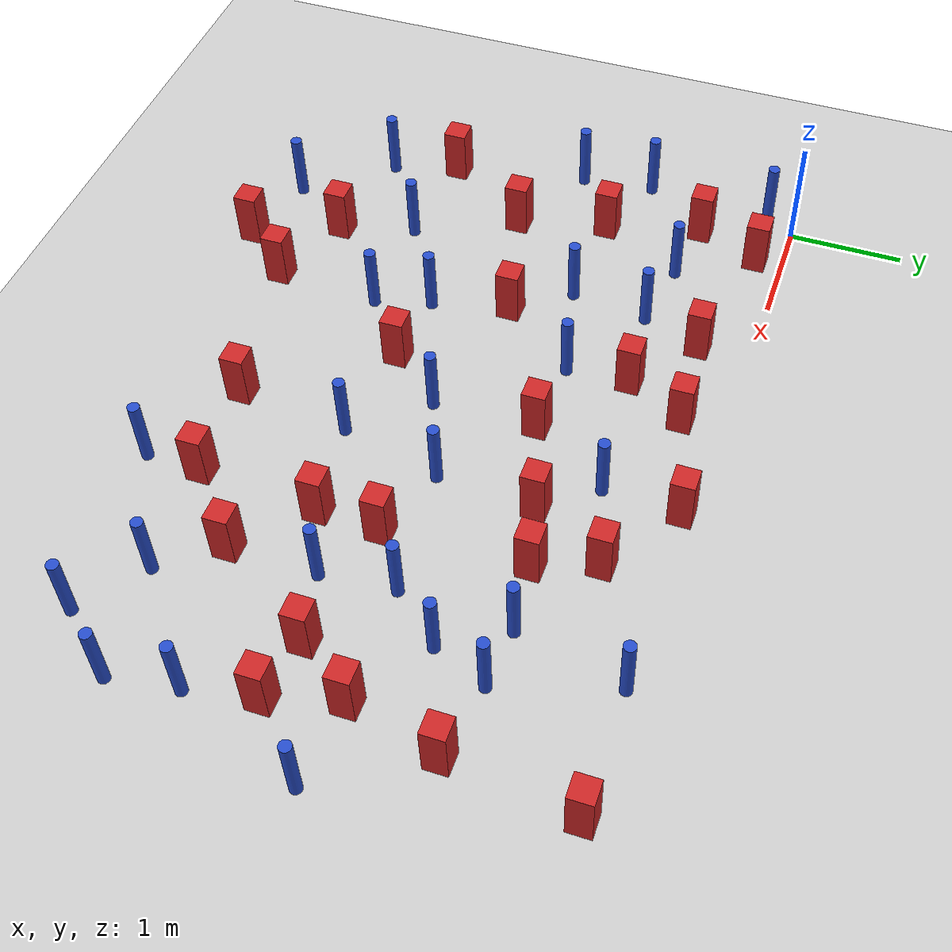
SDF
<sdf version="1.6">
 <world name="default">
  <model name="ground_plane">
   <static>1</static>
   <link name="link">
    <collision name="collision">
     <geometry><plane><normal>0 0 1</normal><size>100 100</size></plane></geometry>
     <surface><friction><ode><mu>100</mu><mu2>50</mu2></ode></friction></surface>
    </collision>
    <visual name="visual">
     <cast_shadows>0</cast_shadows>
     <geometry><plane><normal>0 0 1</normal><size>100 100</size></plane></geometry>
     <material>
      <ambient>1.0 1.0 1.0 1.0</ambient>
      <diffuse>0.8 0.8 0.8 1.0</diffuse>
      <specular>0.01 0.01 0.01 1.000000</specular>
     </material>
    </visual>
   </link>
  </model>
  <model name="pole_obstacle3">
   <static>true</static>
   <pose>1.36535453038 -1.66823402295 7.38925637345e-09 -8.471706928e-08 1.24976765079e-08 -1.74513093017e-07</pose>
   <link name="link">
    <pose>0 0 0.3 0 -0 0</pose>
    <inertial>
     <mass>1</mass>
     <inertia><ixx>0.145833</ixx><ixy>0</ixy><ixz>0</ixz><iyy>0.145833</iyy><iyz>0</iyz><izz>0.125</izz></inertia>
    </inertial>
    <collision name="collision">
     <geometry><cylinder><radius>0.05</radius><length>.6</length></cylinder></geometry>
    </collision>
    <visual name="visual">
     <geometry><cylinder><radius>0.05</radius><length>.6</length></cylinder></geometry>
     <material>
      <script><name>Gazebo/Blue</name><uri>file://media/materials/scripts/gazebo.material</uri></script>
     </material>
    </visual>
   </link>
  </model>
  <model name="square_post_obstacle3">
   <static>true</static>
   <pose>0.450205299994 -1.62794574472 1.91545236811e-07 -7.35059704564e-06 1.12565212e-07 2.39332434364e-05</pose>
   <link name="link">
    <pose>0 0 0.25 0 -0 0</pose>
    <inertial>
     <mass>100</mass>
     <inertia>
      <ixx>0.166667</ixx>
      <ixy>0</ixy>
      <ixz>0</ixz>
      <iyy>0.166667</iyy>
      <iyz>0</iyz>
      <izz>0.166667</izz>
     </inertia>
    </inertial>
    <collision name="collision"><geometry><box><size>.2 .2 .5</size></box></geometry></collision>
    <visual name="visual">
     <geometry><box><size>.2 .2 .5</size></box></geometry>
     <material>
      <script><name>Gazebo/Red</name><uri>file://media/materials/scripts/gazebo.material</uri></script>
     </material>
    </visual>
   </link>
  </model>
  <model name="pole_obstacle12">
   <static>true</static>
   <pose>4.83359117954 -1.04137075191 7.38925637345e-09 -8.471706928e-08 1.24976765101e-08 -1.74513093015e-07</pose>
   <link name="link">
    <pose>0 0 0.3 0 -0 0</pose>
    <inertial>
     <mass>1</mass>
     <inertia><ixx>0.145833</ixx><ixy>0</ixy><ixz>0</ixz><iyy>0.145833</iyy><iyz>0</iyz><izz>0.125</izz></inertia>
    </inertial>
    <collision name="collision">
     <geometry><cylinder><radius>0.05</radius><length>.6</length></cylinder></geometry>
    </collision>
    <visual name="visual">
     <geometry><cylinder><radius>0.05</radius><length>.6</length></cylinder></geometry>
     <material>
      <script><name>Gazebo/Blue</name><uri>file://media/materials/scripts/gazebo.material</uri></script>
     </material>
    </visual>
   </link>
  </model>
  <model name="pole_obstacle15">
   <static>true</static>
   <pose>3.44114598917 -2.97209151565 7.38925637345e-09 -8.47170692798e-08 1.24976764939e-08 -1.74513093025e-07</pose>
   <link name="link">
    <pose>0 0 0.3 0 -0 0</pose>
    <inertial>
     <mass>1</mass>
     <inertia><ixx>0.145833</ixx><ixy>0</ixy><ixz>0</ixz><iyy>0.145833</iyy><iyz>0</iyz><izz>0.125</izz></inertia>
    </inertial>
    <collision name="collision">
     <geometry><cylinder><radius>0.05</radius><length>.6</length></cylinder></geometry>
    </collision>
    <visual name="visual">
     <geometry><cylinder><radius>0.05</radius><length>.6</length></cylinder></geometry>
     <material>
      <script><name>Gazebo/Blue</name><uri>file://media/materials/scripts/gazebo.material</uri></script>
     </material>
    </visual>
   </link>
  </model>
  <model name="square_post_obstacle14">
   <static>true</static>
   <pose>1.92939819333 -4.22741592281 1.91545236811e-07 -7.35059704564e-06 1.12565212e-07 2.39332434364e-05</pose>
   <link name="link">
    <pose>0 0 0.25 0 -0 0</pose>
    <inertial>
     <mass>100</mass>
     <inertia>
      <ixx>0.166667</ixx>
      <ixy>0</ixy>
      <ixz>0</ixz>
      <iyy>0.166667</iyy>
      <iyz>0</iyz>
      <izz>0.166667</izz>
     </inertia>
    </inertial>
    <collision name="collision"><geometry><box><size>.2 .2 .5</size></box></geometry></collision>
    <visual name="visual">
     <geometry><box><size>.2 .2 .5</size></box></geometry>
     <material>
      <script><name>Gazebo/Red</name><uri>file://media/materials/scripts/gazebo.material</uri></script>
     </material>
    </visual>
   </link>
  </model>
  <model name="square_post_obstacle17">
   <static>true</static>
   <pose>6.1021036967 -0.124068634108 1.91545236811e-07 -7.35059704564e-06 1.12565212e-07 2.39332434364e-05</pose>
   <link name="link">
    <pose>0 0 0.25 0 -0 0</pose>
    <inertial>
     <mass>100</mass>
     <inertia>
      <ixx>0.166667</ixx>
      <ixy>0</ixy>
      <ixz>0</ixz>
      <iyy>0.166667</iyy>
      <iyz>0</iyz>
      <izz>0.166667</izz>
     </inertia>
    </inertial>
    <collision name="collision"><geometry><box><size>.2 .2 .5</size></box></geometry></collision>
    <visual name="visual">
     <geometry><box><size>.2 .2 .5</size></box></geometry>
     <material>
      <script><name>Gazebo/Red</name><uri>file://media/materials/scripts/gazebo.material</uri></script>
     </material>
    </visual>
   </link>
  </model>
  <model name="pole_obstacle29">
   <static>true</static>
   <pose>5.16206629791 -3.83146665254 7.38925637345e-09 -8.47170692798e-08 1.24976764937e-08 -1.74513093023e-07</pose>
   <link name="link">
    <pose>0 0 0.3 0 -0 0</pose>
    <inertial>
     <mass>1</mass>
     <inertia><ixx>0.145833</ixx><ixy>0</ixy><ixz>0</ixz><iyy>0.145833</iyy><iyz>0</iyz><izz>0.125</izz></inertia>
    </inertial>
    <collision name="collision">
     <geometry><cylinder><radius>0.05</radius><length>.6</length></cylinder></geometry>
    </collision>
    <visual name="visual">
     <geometry><cylinder><radius>0.05</radius><length>.6</length></cylinder></geometry>
     <material>
      <script><name>Gazebo/Blue</name><uri>file://media/materials/scripts/gazebo.material</uri></script>
     </material>
    </visual>
   </link>
  </model>
  <model name="square_post_obstacle24">
   <static>true</static>
   <pose>3.32999627245 -3.93940164644 1.91545236811e-07 -7.35059704564e-06 1.12565212e-07 2.39332434364e-05</pose>
   <link name="link">
    <pose>0 0 0.25 0 -0 0</pose>
    <inertial>
     <mass>100</mass>
     <inertia>
      <ixx>0.166667</ixx>
      <ixy>0</ixy>
      <ixz>0</ixz>
      <iyy>0.166667</iyy>
      <iyz>0</iyz>
      <izz>0.166667</izz>
     </inertia>
    </inertial>
    <collision name="collision"><geometry><box><size>.2 .2 .5</size></box></geometry></collision>
    <visual name="visual">
     <geometry><box><size>.2 .2 .5</size></box></geometry>
     <material>
      <script><name>Gazebo/Red</name><uri>file://media/materials/scripts/gazebo.material</uri></script>
     </material>
    </visual>
   </link>
  </model>
  <model name="pole_obstacle32">
   <static>true</static>
   <pose>5.14163815132 -1.55246912967 7.38925637345e-09 -8.471706928e-08 1.24976765134e-08 -1.74513093015e-07</pose>
   <link name="link">
    <pose>0 0 0.3 0 -0 0</pose>
    <inertial>
     <mass>1</mass>
     <inertia><ixx>0.145833</ixx><ixy>0</ixy><ixz>0</ixz><iyy>0.145833</iyy><iyz>0</iyz><izz>0.125</izz></inertia>
    </inertial>
    <collision name="collision">
     <geometry><cylinder><radius>0.05</radius><length>.6</length></cylinder></geometry>
    </collision>
    <visual name="visual">
     <geometry><cylinder><radius>0.05</radius><length>.6</length></cylinder></geometry>
     <material>
      <script><name>Gazebo/Blue</name><uri>file://media/materials/scripts/gazebo.material</uri></script>
     </material>
    </visual>
   </link>
  </model>
  <model name="square_post_obstacle27">
   <static>true</static>
   <pose>1.72005549747 -2.13473677915 1.91545236811e-07 -7.35059704564e-06 1.12565212e-07 2.39332434364e-05</pose>
   <link name="link">
    <pose>0 0 0.25 0 -0 0</pose>
    <inertial>
     <mass>100</mass>
     <inertia>
      <ixx>0.166667</ixx>
      <ixy>0</ixy>
      <ixz>0</ixz>
      <iyy>0.166667</iyy>
      <iyz>0</iyz>
      <izz>0.166667</izz>
     </inertia>
    </inertial>
    <collision name="collision"><geometry><box><size>.2 .2 .5</size></box></geometry></collision>
    <visual name="visual">
     <geometry><box><size>.2 .2 .5</size></box></geometry>
     <material>
      <script><name>Gazebo/Red</name><uri>file://media/materials/scripts/gazebo.material</uri></script>
     </material>
    </visual>
   </link>
  </model>
  <model name="pole_obstacle40">
   <static>true</static>
   <pose>2.94955658759 -2.39066903167 7.38925637345e-09 -8.47170692798e-08 1.24976764939e-08 -1.74513093025e-07</pose>
   <link name="link">
    <pose>0 0 0.3 0 -0 0</pose>
    <inertial>
     <mass>1</mass>
     <inertia><ixx>0.145833</ixx><ixy>0</ixy><ixz>0</ixz><iyy>0.145833</iyy><iyz>0</iyz><izz>0.125</izz></inertia>
    </inertial>
    <collision name="collision">
     <geometry><cylinder><radius>0.05</radius><length>.6</length></cylinder></geometry>
    </collision>
    <visual name="visual">
     <geometry><cylinder><radius>0.05</radius><length>.6</length></cylinder></geometry>
     <material>
      <script><name>Gazebo/Blue</name><uri>file://media/materials/scripts/gazebo.material</uri></script>
     </material>
    </visual>
   </link>
  </model>
  <model name="pole_obstacle48">
   <static>true</static>
   <pose>3.37800900533 -0.804060437553 7.38925637345e-09 -8.471706928e-08 1.24976765177e-08 -1.74513093012e-07</pose>
   <link name="link">
    <pose>0 0 0.3 0 -0 0</pose>
    <inertial>
     <mass>1</mass>
     <inertia><ixx>0.145833</ixx><ixy>0</ixy><ixz>0</ixz><iyy>0.145833</iyy><iyz>0</iyz><izz>0.125</izz></inertia>
    </inertial>
    <collision name="collision">
     <geometry><cylinder><radius>0.05</radius><length>.6</length></cylinder></geometry>
    </collision>
    <visual name="visual">
     <geometry><cylinder><radius>0.05</radius><length>.6</length></cylinder></geometry>
     <material>
      <script><name>Gazebo/Blue</name><uri>file://media/materials/scripts/gazebo.material</uri></script>
     </material>
    </visual>
   </link>
  </model>
  <model name="pole_obstacle58">
   <static>true</static>
   <pose>4.76750590606 -1.98459225023 7.38925637345e-09 -8.47170692801e-08 1.24976765219e-08 -1.74513093009e-07</pose>
   <link name="link">
    <pose>0 0 0.3 0 -0 0</pose>
    <inertial>
     <mass>1</mass>
     <inertia><ixx>0.145833</ixx><ixy>0</ixy><ixz>0</ixz><iyy>0.145833</iyy><iyz>0</iyz><izz>0.125</izz></inertia>
    </inertial>
    <collision name="collision">
     <geometry><cylinder><radius>0.05</radius><length>.6</length></cylinder></geometry>
    </collision>
    <visual name="visual">
     <geometry><cylinder><radius>0.05</radius><length>.6</length></cylinder></geometry>
     <material>
      <script><name>Gazebo/Blue</name><uri>file://media/materials/scripts/gazebo.material</uri></script>
     </material>
    </visual>
   </link>
  </model>
  <model name="pole_obstacle60">
   <static>true</static>
   <pose>-0.210230665852 -1.38126304731 7.38925637345e-09 -8.47170692799e-08 1.24976765077e-08 -1.74513093016e-07</pose>
   <link name="link">
    <pose>0 0 0.3 0 -0 0</pose>
    <inertial>
     <mass>1</mass>
     <inertia><ixx>0.145833</ixx><ixy>0</ixy><ixz>0</ixz><iyy>0.145833</iyy><iyz>0</iyz><izz>0.125</izz></inertia>
    </inertial>
    <collision name="collision">
     <geometry><cylinder><radius>0.05</radius><length>.6</length></cylinder></geometry>
    </collision>
    <visual name="visual">
     <geometry><cylinder><radius>0.05</radius><length>.6</length></cylinder></geometry>
     <material>
      <script><name>Gazebo/Blue</name><uri>file://media/materials/scripts/gazebo.material</uri></script>
     </material>
    </visual>
   </link>
  </model>
  <model name="pole_obstacle61">
   <static>true</static>
   <pose>1.03298656549 -3.30259779731 7.38925637345e-09 -8.471706928e-08 1.2497676505e-08 -1.74513093017e-07</pose>
   <link name="link">
    <pose>0 0 0.3 0 -0 0</pose>
    <inertial>
     <mass>1</mass>
     <inertia><ixx>0.145833</ixx><ixy>0</ixy><ixz>0</ixz><iyy>0.145833</iyy><iyz>0</iyz><izz>0.125</izz></inertia>
    </inertial>
    <collision name="collision">
     <geometry><cylinder><radius>0.05</radius><length>.6</length></cylinder></geometry>
    </collision>
    <visual name="visual">
     <geometry><cylinder><radius>0.05</radius><length>.6</length></cylinder></geometry>
     <material>
      <script><name>Gazebo/Blue</name><uri>file://media/materials/scripts/gazebo.material</uri></script>
     </material>
    </visual>
   </link>
  </model>
  <model name="pole_obstacle62">
   <static>true</static>
   <pose>1.45802499866 -0.98714933878 7.38925637345e-09 -8.47170692798e-08 1.24976765028e-08 -1.74513093019e-07</pose>
   <link name="link">
    <pose>0 0 0.3 0 -0 0</pose>
    <inertial>
     <mass>1</mass>
     <inertia><ixx>0.145833</ixx><ixy>0</ixy><ixz>0</ixz><iyy>0.145833</iyy><iyz>0</iyz><izz>0.125</izz></inertia>
    </inertial>
    <collision name="collision">
     <geometry><cylinder><radius>0.05</radius><length>.6</length></cylinder></geometry>
    </collision>
    <visual name="visual">
     <geometry><cylinder><radius>0.05</radius><length>.6</length></cylinder></geometry>
     <material>
      <script><name>Gazebo/Blue</name><uri>file://media/materials/scripts/gazebo.material</uri></script>
     </material>
    </visual>
   </link>
  </model>
  <model name="pole_obstacle64">
   <static>true</static>
   <pose>5.68646608866 -4.22361139658 7.38925637345e-09 -8.47170692796e-08 1.24976764786e-08 -1.74513093032e-07</pose>
   <link name="link">
    <pose>0 0 0.3 0 -0 0</pose>
    <inertial>
     <mass>1</mass>
     <inertia><ixx>0.145833</ixx><ixy>0</ixy><ixz>0</ixz><iyy>0.145833</iyy><iyz>0</iyz><izz>0.125</izz></inertia>
    </inertial>
    <collision name="collision">
     <geometry><cylinder><radius>0.05</radius><length>.6</length></cylinder></geometry>
    </collision>
    <visual name="visual">
     <geometry><cylinder><radius>0.05</radius><length>.6</length></cylinder></geometry>
     <material>
      <script><name>Gazebo/Blue</name><uri>file://media/materials/scripts/gazebo.material</uri></script>
     </material>
    </visual>
   </link>
  </model>
  <model name="pole_obstacle66">
   <static>true</static>
   <pose>-0.139459007953 -2.0271608747 7.38925637345e-09 -8.47170692799e-08 1.24976765085e-08 -1.74513093016e-07</pose>
   <link name="link">
    <pose>0 0 0.3 0 -0 0</pose>
    <inertial>
     <mass>1</mass>
     <inertia><ixx>0.145833</ixx><ixy>0</ixy><ixz>0</ixz><iyy>0.145833</iyy><iyz>0</iyz><izz>0.125</izz></inertia>
    </inertial>
    <collision name="collision">
     <geometry><cylinder><radius>0.05</radius><length>.6</length></cylinder></geometry>
    </collision>
    <visual name="visual">
     <geometry><cylinder><radius>0.05</radius><length>.6</length></cylinder></geometry>
     <material>
      <script><name>Gazebo/Blue</name><uri>file://media/materials/scripts/gazebo.material</uri></script>
     </material>
    </visual>
   </link>
  </model>
  <model name="square_post_obstacle51">
   <static>true</static>
   <pose>1.21152823677 -3.94231222589 1.91545236811e-07 -7.35059704564e-06 1.12565212e-07 2.39332434364e-05</pose>
   <link name="link">
    <pose>0 0 0.25 0 -0 0</pose>
    <inertial>
     <mass>100</mass>
     <inertia>
      <ixx>0.166667</ixx>
      <ixy>0</ixy>
      <ixz>0</ixz>
      <iyy>0.166667</iyy>
      <iyz>0</iyz>
      <izz>0.166667</izz>
     </inertia>
    </inertial>
    <collision name="collision"><geometry><box><size>.2 .2 .5</size></box></geometry></collision>
    <visual name="visual">
     <geometry><box><size>.2 .2 .5</size></box></geometry>
     <material>
      <script><name>Gazebo/Red</name><uri>file://media/materials/scripts/gazebo.material</uri></script>
     </material>
    </visual>
   </link>
  </model>
  <model name="square_post_obstacle53">
   <static>true</static>
   <pose>5.93823520516 -2.5481437584 1.91545236811e-07 -7.35059704564e-06 1.12565212e-07 2.39332434364e-05</pose>
   <link name="link">
    <pose>0 0 0.25 0 -0 0</pose>
    <inertial>
     <mass>100</mass>
     <inertia>
      <ixx>0.166667</ixx>
      <ixy>0</ixy>
      <ixz>0</ixz>
      <iyy>0.166667</iyy>
      <iyz>0</iyz>
      <izz>0.166667</izz>
     </inertia>
    </inertial>
    <collision name="collision"><geometry><box><size>.2 .2 .5</size></box></geometry></collision>
    <visual name="visual">
     <geometry><box><size>.2 .2 .5</size></box></geometry>
     <material>
      <script><name>Gazebo/Red</name><uri>file://media/materials/scripts/gazebo.material</uri></script>
     </material>
    </visual>
   </link>
  </model>
  <model name="square_post_obstacle66">
   <static>true</static>
   <pose>2.92631556291 -1.49507829063 1.91545236811e-07 -7.35059704564e-06 1.12565212e-07 2.39332434364e-05</pose>
   <link name="link">
    <pose>0 0 0.25 0 -0 0</pose>
    <inertial>
     <mass>100</mass>
     <inertia>
      <ixx>0.166667</ixx>
      <ixy>0</ixy>
      <ixz>0</ixz>
      <iyy>0.166667</iyy>
      <iyz>0</iyz>
      <izz>0.166667</izz>
     </inertia>
    </inertial>
    <collision name="collision"><geometry><box><size>.2 .2 .5</size></box></geometry></collision>
    <visual name="visual">
     <geometry><box><size>.2 .2 .5</size></box></geometry>
     <material>
      <script><name>Gazebo/Red</name><uri>file://media/materials/scripts/gazebo.material</uri></script>
     </material>
    </visual>
   </link>
  </model>
  <model name="pole_obstacle81">
   <static>true</static>
   <pose>5.33284650465 -1.08851998047 7.38925637345e-09 -8.471706928e-08 1.24976765134e-08 -1.74513093015e-07</pose>
   <link name="link">
    <pose>0 0 0.3 0 -0 0</pose>
    <inertial>
     <mass>1</mass>
     <inertia><ixx>0.145833</ixx><ixy>0</ixy><ixz>0</ixz><iyy>0.145833</iyy><iyz>0</iyz><izz>0.125</izz></inertia>
    </inertial>
    <collision name="collision">
     <geometry><cylinder><radius>0.05</radius><length>.6</length></cylinder></geometry>
    </collision>
    <visual name="visual">
     <geometry><cylinder><radius>0.05</radius><length>.6</length></cylinder></geometry>
     <material>
      <script><name>Gazebo/Blue</name><uri>file://media/materials/scripts/gazebo.material</uri></script>
     </material>
    </visual>
   </link>
  </model>
  <model name="square_post_obstacle70">
   <static>true</static>
   <pose>0.229668520907 -0.798963734071 1.91545236811e-07 -7.35059704564e-06 1.12565212e-07 2.39332434364e-05</pose>
   <link name="link">
    <pose>0 0 0.25 0 -0 0</pose>
    <inertial>
     <mass>100</mass>
     <inertia>
      <ixx>0.166667</ixx>
      <ixy>0</ixy>
      <ixz>0</ixz>
      <iyy>0.166667</iyy>
      <iyz>0</iyz>
      <izz>0.166667</izz>
     </inertia>
    </inertial>
    <collision name="collision"><geometry><box><size>.2 .2 .5</size></box></geometry></collision>
    <visual name="visual">
     <geometry><box><size>.2 .2 .5</size></box></geometry>
     <material>
      <script><name>Gazebo/Red</name><uri>file://media/materials/scripts/gazebo.material</uri></script>
     </material>
    </visual>
   </link>
  </model>
  <model name="square_post_obstacle72">
   <static>true</static>
   <pose>3.42189751689 -0.144422942581 1.91545236811e-07 -7.35059704564e-06 1.12565212e-07 2.39332434364e-05</pose>
   <link name="link">
    <pose>0 0 0.25 0 -0 0</pose>
    <inertial>
     <mass>100</mass>
     <inertia>
      <ixx>0.166667</ixx>
      <ixy>0</ixy>
      <ixz>0</ixz>
      <iyy>0.166667</iyy>
      <iyz>0</iyz>
      <izz>0.166667</izz>
     </inertia>
    </inertial>
    <collision name="collision"><geometry><box><size>.2 .2 .5</size></box></geometry></collision>
    <visual name="visual">
     <geometry><box><size>.2 .2 .5</size></box></geometry>
     <material>
      <script><name>Gazebo/Red</name><uri>file://media/materials/scripts/gazebo.material</uri></script>
     </material>
    </visual>
   </link>
  </model>
  <model name="pole_obstacle98">
   <static>true</static>
   <pose>-0.160208129123 -0.26180595981 7.38925637345e-09 -8.47170692798e-08 1.24976764963e-08 -1.74513093021e-07</pose>
   <link name="link">
    <pose>0 0 0.3 0 -0 0</pose>
    <inertial>
     <mass>1</mass>
     <inertia><ixx>0.145833</ixx><ixy>0</ixy><ixz>0</ixz><iyy>0.145833</iyy><iyz>0</iyz><izz>0.125</izz></inertia>
    </inertial>
    <collision name="collision">
     <geometry><cylinder><radius>0.05</radius><length>.6</length></cylinder></geometry>
    </collision>
    <visual name="visual">
     <geometry><cylinder><radius>0.05</radius><length>.6</length></cylinder></geometry>
     <material>
      <script><name>Gazebo/Blue</name><uri>file://media/materials/scripts/gazebo.material</uri></script>
     </material>
    </visual>
   </link>
  </model>
  <model name="pole_obstacle99">
   <static>true</static>
   <pose>3.66267367697 -2.09103753761 7.38925637345e-09 -8.47170692798e-08 1.24976764939e-08 -1.74513093025e-07</pose>
   <link name="link">
    <pose>0 0 0.3 0 -0 0</pose>
    <inertial>
     <mass>1</mass>
     <inertia><ixx>0.145833</ixx><ixy>0</ixy><ixz>0</ixz><iyy>0.145833</iyy><iyz>0</iyz><izz>0.125</izz></inertia>
    </inertial>
    <collision name="collision">
     <geometry><cylinder><radius>0.05</radius><length>.6</length></cylinder></geometry>
    </collision>
    <visual name="visual">
     <geometry><cylinder><radius>0.05</radius><length>.6</length></cylinder></geometry>
     <material>
      <script><name>Gazebo/Blue</name><uri>file://media/materials/scripts/gazebo.material</uri></script>
     </material>
    </visual>
   </link>
  </model>
  <model name="square_post_obstacle95">
   <static>true</static>
   <pose>4.20131672372 -3.88346194134 1.91545236811e-07 -7.35059704564e-06 1.12565212e-07 2.39332434364e-05</pose>
   <link name="link">
    <pose>0 0 0.25 0 -0 0</pose>
    <inertial>
     <mass>100</mass>
     <inertia>
      <ixx>0.166667</ixx>
      <ixy>0</ixy>
      <ixz>0</ixz>
      <iyy>0.166667</iyy>
      <iyz>0</iyz>
      <izz>0.166667</izz>
     </inertia>
    </inertial>
    <collision name="collision"><geometry><box><size>.2 .2 .5</size></box></geometry></collision>
    <visual name="visual">
     <geometry><box><size>.2 .2 .5</size></box></geometry>
     <material>
      <script><name>Gazebo/Red</name><uri>file://media/materials/scripts/gazebo.material</uri></script>
     </material>
    </visual>
   </link>
  </model>
  <model name="square_post_obstacle97">
   <static>true</static>
   <pose>5.97238558868 -1.19133295216 1.91545236811e-07 -7.35059704564e-06 1.12565212e-07 2.39332434364e-05</pose>
   <link name="link">
    <pose>0 0 0.25 0 -0 0</pose>
    <inertial>
     <mass>100</mass>
     <inertia>
      <ixx>0.166667</ixx>
      <ixy>0</ixy>
      <ixz>0</ixz>
      <iyy>0.166667</iyy>
      <iyz>0</iyz>
      <izz>0.166667</izz>
     </inertia>
    </inertial>
    <collision name="collision"><geometry><box><size>.2 .2 .5</size></box></geometry></collision>
    <visual name="visual">
     <geometry><box><size>.2 .2 .5</size></box></geometry>
     <material>
      <script><name>Gazebo/Red</name><uri>file://media/materials/scripts/gazebo.material</uri></script>
     </material>
    </visual>
   </link>
  </model>
  <model name="square_post_obstacle103">
   <static>true</static>
   <pose>4.27914857197 -2.84280432113 1.91545236811e-07 -7.35059704564e-06 1.12565212e-07 2.39332434364e-05</pose>
   <link name="link">
    <pose>0 0 0.25 0 -0 0</pose>
    <inertial>
     <mass>100</mass>
     <inertia>
      <ixx>0.166667</ixx>
      <ixy>0</ixy>
      <ixz>0</ixz>
      <iyy>0.166667</iyy>
      <iyz>0</iyz>
      <izz>0.166667</izz>
     </inertia>
    </inertial>
    <collision name="collision"><geometry><box><size>.2 .2 .5</size></box></geometry></collision>
    <visual name="visual">
     <geometry><box><size>.2 .2 .5</size></box></geometry>
     <material>
      <script><name>Gazebo/Red</name><uri>file://media/materials/scripts/gazebo.material</uri></script>
     </material>
    </visual>
   </link>
  </model>
  <model name="square_post_obstacle105">
   <static>true</static>
   <pose>0.63125477231 -2.42149757167 1.91545236811e-07 -7.35059704564e-06 1.12565212e-07 2.39332434364e-05</pose>
   <link name="link">
    <pose>0 0 0.25 0 -0 0</pose>
    <inertial>
     <mass>100</mass>
     <inertia>
      <ixx>0.166667</ixx>
      <ixy>0</ixy>
      <ixz>0</ixz>
      <iyy>0.166667</iyy>
      <iyz>0</iyz>
      <izz>0.166667</izz>
     </inertia>
    </inertial>
    <collision name="collision"><geometry><box><size>.2 .2 .5</size></box></geometry></collision>
    <visual name="visual">
     <geometry><box><size>.2 .2 .5</size></box></geometry>
     <material>
      <script><name>Gazebo/Red</name><uri>file://media/materials/scripts/gazebo.material</uri></script>
     </material>
    </visual>
   </link>
  </model>
  <model name="square_post_obstacle109">
   <static>true</static>
   <pose>4.26420036768 -1.10231912442 1.91545236811e-07 -7.35059704564e-06 1.12565212e-07 2.39332434364e-05</pose>
   <link name="link">
    <pose>0 0 0.25 0 -0 0</pose>
    <inertial>
     <mass>100</mass>
     <inertia>
      <ixx>0.166667</ixx>
      <ixy>0</ixy>
      <ixz>0</ixz>
      <iyy>0.166667</iyy>
      <iyz>0</iyz>
      <izz>0.166667</izz>
     </inertia>
    </inertial>
    <collision name="collision"><geometry><box><size>.2 .2 .5</size></box></geometry></collision>
    <visual name="visual">
     <geometry><box><size>.2 .2 .5</size></box></geometry>
     <material>
      <script><name>Gazebo/Red</name><uri>file://media/materials/scripts/gazebo.material</uri></script>
     </material>
    </visual>
   </link>
  </model>
  <model name="square_post_obstacle110">
   <static>true</static>
   <pose>2.54021837371 -2.86434196658 1.91545236811e-07 -7.35059704564e-06 1.12565212e-07 2.39332434364e-05</pose>
   <link name="link">
    <pose>0 0 0.25 0 -0 0</pose>
    <inertial>
     <mass>100</mass>
     <inertia>
      <ixx>0.166667</ixx>
      <ixy>0</ixy>
      <ixz>0</ixz>
      <iyy>0.166667</iyy>
      <iyz>0</iyz>
      <izz>0.166667</izz>
     </inertia>
    </inertial>
    <collision name="collision"><geometry><box><size>.2 .2 .5</size></box></geometry></collision>
    <visual name="visual">
     <geometry><box><size>.2 .2 .5</size></box></geometry>
     <material>
      <script><name>Gazebo/Red</name><uri>file://media/materials/scripts/gazebo.material</uri></script>
     </material>
    </visual>
   </link>
  </model>
  <model name="square_post_obstacle118">
   <static>true</static>
   <pose>1.65271014908 -0.463343718129 1.91545236811e-07 -7.35059704564e-06 1.12565212e-07 2.39332434364e-05</pose>
   <link name="link">
    <pose>0 0 0.25 0 -0 0</pose>
    <inertial>
     <mass>100</mass>
     <inertia>
      <ixx>0.166667</ixx>
      <ixy>0</ixy>
      <ixz>0</ixz>
      <iyy>0.166667</iyy>
      <iyz>0</iyz>
      <izz>0.166667</izz>
     </inertia>
    </inertial>
    <collision name="collision"><geometry><box><size>.2 .2 .5</size></box></geometry></collision>
    <visual name="visual">
     <geometry><box><size>.2 .2 .5</size></box></geometry>
     <material>
      <script><name>Gazebo/Red</name><uri>file://media/materials/scripts/gazebo.material</uri></script>
     </material>
    </visual>
   </link>
  </model>
  <model name="pole_obstacle126">
   <static>true</static>
   <pose>1.99401713036 -3.30578207643 7.38925637345e-09 -8.47170692799e-08 1.24976765015e-08 -1.74513093019e-07</pose>
   <link name="link">
    <pose>0 0 0.3 0 -0 0</pose>
    <inertial>
     <mass>1</mass>
     <inertia><ixx>0.145833</ixx><ixy>0</ixy><ixz>0</ixz><iyy>0.145833</iyy><iyz>0</iyz><izz>0.125</izz></inertia>
    </inertial>
    <collision name="collision">
     <geometry><cylinder><radius>0.05</radius><length>.6</length></cylinder></geometry>
    </collision>
    <visual name="visual">
     <geometry><cylinder><radius>0.05</radius><length>.6</length></cylinder></geometry>
     <material>
      <script><name>Gazebo/Blue</name><uri>file://media/materials/scripts/gazebo.material</uri></script>
     </material>
    </visual>
   </link>
  </model>
  <model name="pole_obstacle130">
   <static>true</static>
   <pose>4.82312118412 -2.60982054342 7.38925637345e-09 -8.47170692798e-08 1.24976764937e-08 -1.74513093023e-07</pose>
   <link name="link">
    <pose>0 0 0.3 0 -0 0</pose>
    <inertial>
     <mass>1</mass>
     <inertia><ixx>0.145833</ixx><ixy>0</ixy><ixz>0</ixz><iyy>0.145833</iyy><iyz>0</iyz><izz>0.125</izz></inertia>
    </inertial>
    <collision name="collision">
     <geometry><cylinder><radius>0.05</radius><length>.6</length></cylinder></geometry>
    </collision>
    <visual name="visual">
     <geometry><cylinder><radius>0.05</radius><length>.6</length></cylinder></geometry>
     <material>
      <script><name>Gazebo/Blue</name><uri>file://media/materials/scripts/gazebo.material</uri></script>
     </material>
    </visual>
   </link>
  </model>
  <model name="pole_obstacle131">
   <static>true</static>
   <pose>6.12219785313 -3.71231544003 7.38925637345e-09 -8.47170692798e-08 1.24976764937e-08 -1.74513093023e-07</pose>
   <link name="link">
    <pose>0 0 0.3 0 -0 0</pose>
    <inertial>
     <mass>1</mass>
     <inertia><ixx>0.145833</ixx><ixy>0</ixy><ixz>0</ixz><iyy>0.145833</iyy><iyz>0</iyz><izz>0.125</izz></inertia>
    </inertial>
    <collision name="collision">
     <geometry><cylinder><radius>0.05</radius><length>.6</length></cylinder></geometry>
    </collision>
    <visual name="visual">
     <geometry><cylinder><radius>0.05</radius><length>.6</length></cylinder></geometry>
     <material>
      <script><name>Gazebo/Blue</name><uri>file://media/materials/scripts/gazebo.material</uri></script>
     </material>
    </visual>
   </link>
  </model>
  <model name="pole_obstacle132">
   <static>true</static>
   <pose>5.04200417076 -0.125733508153 7.38925637345e-09 -8.471706928e-08 1.24976765188e-08 -1.74513093011e-07</pose>
   <link name="link">
    <pose>0 0 0.3 0 -0 0</pose>
    <inertial>
     <mass>1</mass>
     <inertia><ixx>0.145833</ixx><ixy>0</ixy><ixz>0</ixz><iyy>0.145833</iyy><iyz>0</iyz><izz>0.125</izz></inertia>
    </inertial>
    <collision name="collision">
     <geometry><cylinder><radius>0.05</radius><length>.6</length></cylinder></geometry>
    </collision>
    <visual name="visual">
     <geometry><cylinder><radius>0.05</radius><length>.6</length></cylinder></geometry>
     <material>
      <script><name>Gazebo/Blue</name><uri>file://media/materials/scripts/gazebo.material</uri></script>
     </material>
    </visual>
   </link>
  </model>
  <model name="square_post_obstacle130">
   <static>true</static>
   <pose>4.81669222841 -3.35055147581 1.91545236811e-07 -7.35059704564e-06 1.12565212e-07 2.39332434364e-05</pose>
   <link name="link">
    <pose>0 0 0.25 0 -0 0</pose>
    <inertial>
     <mass>100</mass>
     <inertia>
      <ixx>0.166667</ixx>
      <ixy>0</ixy>
      <ixz>0</ixz>
      <iyy>0.166667</iyy>
      <iyz>0</iyz>
      <izz>0.166667</izz>
     </inertia>
    </inertial>
    <collision name="collision"><geometry><box><size>.2 .2 .5</size></box></geometry></collision>
    <visual name="visual">
     <geometry><box><size>.2 .2 .5</size></box></geometry>
     <material>
      <script><name>Gazebo/Red</name><uri>file://media/materials/scripts/gazebo.material</uri></script>
     </material>
    </visual>
   </link>
  </model>
  <model name="pole_obstacle141">
   <static>true</static>
   <pose>4.17953311439 -4.38463082513 7.38925637345e-09 -8.47170692796e-08 1.24976764786e-08 -1.74513093032e-07</pose>
   <link name="link">
    <pose>0 0 0.3 0 -0 0</pose>
    <inertial>
     <mass>1</mass>
     <inertia><ixx>0.145833</ixx><ixy>0</ixy><ixz>0</ixz><iyy>0.145833</iyy><iyz>0</iyz><izz>0.125</izz></inertia>
    </inertial>
    <collision name="collision">
     <geometry><cylinder><radius>0.05</radius><length>.6</length></cylinder></geometry>
    </collision>
    <visual name="visual">
     <geometry><cylinder><radius>0.05</radius><length>.6</length></cylinder></geometry>
     <material>
      <script><name>Gazebo/Blue</name><uri>file://media/materials/scripts/gazebo.material</uri></script>
     </material>
    </visual>
   </link>
  </model>
  <model name="pole_obstacle142">
   <static>true</static>
   <pose>0.256018979934 -3.7977397196 7.38925637345e-09 -8.471706928e-08 1.24976765078e-08 -1.74513093017e-07</pose>
   <link name="link">
    <pose>0 0 0.3 0 -0 0</pose>
    <inertial>
     <mass>1</mass>
     <inertia><ixx>0.145833</ixx><ixy>0</ixy><ixz>0</ixz><iyy>0.145833</iyy><iyz>0</iyz><izz>0.125</izz></inertia>
    </inertial>
    <collision name="collision">
     <geometry><cylinder><radius>0.05</radius><length>.6</length></cylinder></geometry>
    </collision>
    <visual name="visual">
     <geometry><cylinder><radius>0.05</radius><length>.6</length></cylinder></geometry>
     <material>
      <script><name>Gazebo/Blue</name><uri>file://media/materials/scripts/gazebo.material</uri></script>
     </material>
    </visual>
   </link>
  </model>
  <model name="square_post_obstacle140">
   <static>true</static>
   <pose>5.4103159409 -2.45689151479 1.91545236811e-07 -7.35059704564e-06 1.12565212e-07 2.39332434364e-05</pose>
   <link name="link">
    <pose>0 0 0.25 0 -0 0</pose>
    <inertial>
     <mass>100</mass>
     <inertia>
      <ixx>0.166667</ixx>
      <ixy>0</ixy>
      <ixz>0</ixz>
      <iyy>0.166667</iyy>
      <iyz>0</iyz>
      <izz>0.166667</izz>
     </inertia>
    </inertial>
    <collision name="collision"><geometry><box><size>.2 .2 .5</size></box></geometry></collision>
    <visual name="visual">
     <geometry><box><size>.2 .2 .5</size></box></geometry>
     <material>
      <script><name>Gazebo/Red</name><uri>file://media/materials/scripts/gazebo.material</uri></script>
     </material>
    </visual>
   </link>
  </model>
  <model name="square_post_obstacle144">
   <static>true</static>
   <pose>0.0968636313795 -3.20426878855 1.91545236811e-07 -7.35059704564e-06 1.12565212e-07 2.39332434364e-05</pose>
   <link name="link">
    <pose>0 0 0.25 0 -0 0</pose>
    <inertial>
     <mass>100</mass>
     <inertia>
      <ixx>0.166667</ixx>
      <ixy>0</ixy>
      <ixz>0</ixz>
      <iyy>0.166667</iyy>
      <iyz>0</iyz>
      <izz>0.166667</izz>
     </inertia>
    </inertial>
    <collision name="collision"><geometry><box><size>.2 .2 .5</size></box></geometry></collision>
    <visual name="visual">
     <geometry><box><size>.2 .2 .5</size></box></geometry>
     <material>
      <script><name>Gazebo/Red</name><uri>file://media/materials/scripts/gazebo.material</uri></script>
     </material>
    </visual>
   </link>
  </model>
  <model name="square_post_obstacle153">
   <static>true</static>
   <pose>2.22078890884 -0.909595255958 1.91545236811e-07 -7.35059704564e-06 1.12565212e-07 2.39332434364e-05</pose>
   <link name="link">
    <pose>0 0 0.25 0 -0 0</pose>
    <inertial>
     <mass>100</mass>
     <inertia>
      <ixx>0.166667</ixx>
      <ixy>0</ixy>
      <ixz>0</ixz>
      <iyy>0.166667</iyy>
      <iyz>0</iyz>
      <izz>0.166667</izz>
     </inertia>
    </inertial>
    <collision name="collision"><geometry><box><size>.2 .2 .5</size></box></geometry></collision>
    <visual name="visual">
     <geometry><box><size>.2 .2 .5</size></box></geometry>
     <material>
      <script><name>Gazebo/Red</name><uri>file://media/materials/scripts/gazebo.material</uri></script>
     </material>
    </visual>
   </link>
  </model>
  <model name="pole_obstacle170">
   <static>true</static>
   <pose>6.47559605655 -2.05011886274 7.38925637345e-09 -8.47170692798e-08 1.24976764937e-08 -1.74513093023e-07</pose>
   <link name="link">
    <pose>0 0 0.3 0 -0 0</pose>
    <inertial>
     <mass>1</mass>
     <inertia><ixx>0.145833</ixx><ixy>0</ixy><ixz>0</ixz><iyy>0.145833</iyy><iyz>0</iyz><izz>0.125</izz></inertia>
    </inertial>
    <collision name="collision">
     <geometry><cylinder><radius>0.05</radius><length>.6</length></cylinder></geometry>
    </collision>
    <visual name="visual">
     <geometry><cylinder><radius>0.05</radius><length>.6</length></cylinder></geometry>
     <material>
      <script><name>Gazebo/Blue</name><uri>file://media/materials/scripts/gazebo.material</uri></script>
     </material>
    </visual>
   </link>
  </model>
  <model name="pole_obstacle176">
   <static>true</static>
   <pose>0.819786684977 -0.886542565127 7.38925637345e-09 -8.47170692799e-08 1.24976765008e-08 -1.7451309302e-07</pose>
   <link name="link">
    <pose>0 0 0.3 0 -0 0</pose>
    <inertial>
     <mass>1</mass>
     <inertia><ixx>0.145833</ixx><ixy>0</ixy><ixz>0</ixz><iyy>0.145833</iyy><iyz>0</iyz><izz>0.125</izz></inertia>
    </inertial>
    <collision name="collision">
     <geometry><cylinder><radius>0.05</radius><length>.6</length></cylinder></geometry>
    </collision>
    <visual name="visual">
     <geometry><cylinder><radius>0.05</radius><length>.6</length></cylinder></geometry>
     <material>
      <script><name>Gazebo/Blue</name><uri>file://media/materials/scripts/gazebo.material</uri></script>
     </material>
    </visual>
   </link>
  </model>
  <model name="square_post_obstacle185">
   <static>true</static>
   <pose>5.77874286226 -1.96152359118 1.91545236811e-07 -7.35059704564e-06 1.12565212e-07 2.39332434364e-05</pose>
   <link name="link">
    <pose>0 0 0.25 0 -0 0</pose>
    <inertial>
     <mass>100</mass>
     <inertia>
      <ixx>0.166667</ixx>
      <ixy>0</ixy>
      <ixz>0</ixz>
      <iyy>0.166667</iyy>
      <iyz>0</iyz>
      <izz>0.166667</izz>
     </inertia>
    </inertial>
    <collision name="collision"><geometry><box><size>.2 .2 .5</size></box></geometry></collision>
    <visual name="visual">
     <geometry><box><size>.2 .2 .5</size></box></geometry>
     <material>
      <script><name>Gazebo/Red</name><uri>file://media/materials/scripts/gazebo.material</uri></script>
     </material>
    </visual>
   </link>
  </model>
  <model name="pole_obstacle187">
   <static>true</static>
   <pose>6.04053473716 -3.13604204482 7.38925637345e-09 -8.47170692798e-08 1.24976764937e-08 -1.74513093023e-07</pose>
   <link name="link">
    <pose>0 0 0.3 0 -0 0</pose>
    <inertial>
     <mass>1</mass>
     <inertia><ixx>0.145833</ixx><ixy>0</ixy><ixz>0</ixz><iyy>0.145833</iyy><iyz>0</iyz><izz>0.125</izz></inertia>
    </inertial>
    <collision name="collision">
     <geometry><cylinder><radius>0.05</radius><length>.6</length></cylinder></geometry>
    </collision>
    <visual name="visual">
     <geometry><cylinder><radius>0.05</radius><length>.6</length></cylinder></geometry>
     <material>
      <script><name>Gazebo/Blue</name><uri>file://media/materials/scripts/gazebo.material</uri></script>
     </material>
    </visual>
   </link>
  </model>
  <model name="square_post_obstacle198">
   <static>true</static>
   <pose>2.49783818302 -0.393385260926 1.91545236811e-07 -7.35059704564e-06 1.12565212e-07 2.39332434364e-05</pose>
   <link name="link">
    <pose>0 0 0.25 0 -0 0</pose>
    <inertial>
     <mass>100</mass>
     <inertia>
      <ixx>0.166667</ixx>
      <ixy>0</ixy>
      <ixz>0</ixz>
      <iyy>0.166667</iyy>
      <iyz>0</iyz>
      <izz>0.166667</izz>
     </inertia>
    </inertial>
    <collision name="collision"><geometry><box><size>.2 .2 .5</size></box></geometry></collision>
    <visual name="visual">
     <geometry><box><size>.2 .2 .5</size></box></geometry>
     <material>
      <script><name>Gazebo/Red</name><uri>file://media/materials/scripts/gazebo.material</uri></script>
     </material>
    </visual>
   </link>
  </model>
  <model name="square_post_obstacle199">
   <static>true</static>
   <pose>3.71333983238 -1.24162636692 1.91545236811e-07 -7.35059704564e-06 1.12565212e-07 2.39332434364e-05</pose>
   <link name="link">
    <pose>0 0 0.25 0 -0 0</pose>
    <inertial>
     <mass>100</mass>
     <inertia>
      <ixx>0.166667</ixx>
      <ixy>0</ixy>
      <ixz>0</ixz>
      <iyy>0.166667</iyy>
      <iyz>0</iyz>
      <izz>0.166667</izz>
     </inertia>
    </inertial>
    <collision name="collision"><geometry><box><size>.2 .2 .5</size></box></geometry></collision>
    <visual name="visual">
     <geometry><box><size>.2 .2 .5</size></box></geometry>
     <material>
      <script><name>Gazebo/Red</name><uri>file://media/materials/scripts/gazebo.material</uri></script>
     </material>
    </visual>
   </link>
  </model>
  <model name="pole_obstacle196">
   <static>true</static>
   <pose>1.86526099209 -2.81653941061 7.38925637345e-09 -8.47170692799e-08 1.24976765053e-08 -1.74513093017e-07</pose>
   <link name="link">
    <pose>0 0 0.3 0 -0 0</pose>
    <inertial>
     <mass>1</mass>
     <inertia><ixx>0.145833</ixx><ixy>0</ixy><ixz>0</ixz><iyy>0.145833</iyy><iyz>0</iyz><izz>0.125</izz></inertia>
    </inertial>
    <collision name="collision">
     <geometry><cylinder><radius>0.05</radius><length>.6</length></cylinder></geometry>
    </collision>
    <visual name="visual">
     <geometry><cylinder><radius>0.05</radius><length>.6</length></cylinder></geometry>
     <material>
      <script><name>Gazebo/Blue</name><uri>file://media/materials/scripts/gazebo.material</uri></script>
     </material>
    </visual>
   </link>
  </model>
  <model name="pole_obstacle201">
   <static>true</static>
   <pose>2.24531112012 -1.4549662131 7.38925637345e-09 -8.471706928e-08 1.24976765152e-08 -1.74513093012e-07</pose>
   <link name="link">
    <pose>0 0 0.3 0 -0 0</pose>
    <inertial>
     <mass>1</mass>
     <inertia><ixx>0.145833</ixx><ixy>0</ixy><ixz>0</ixz><iyy>0.145833</iyy><iyz>0</iyz><izz>0.125</izz></inertia>
    </inertial>
    <collision name="collision">
     <geometry><cylinder><radius>0.05</radius><length>.6</length></cylinder></geometry>
    </collision>
    <visual name="visual">
     <geometry><cylinder><radius>0.05</radius><length>.6</length></cylinder></geometry>
     <material>
      <script><name>Gazebo/Blue</name><uri>file://media/materials/scripts/gazebo.material</uri></script>
     </material>
    </visual>
   </link>
  </model>
  <model name="square_post_obstacle210">
   <static>true</static>
   <pose>1.51908986057 -4.68120852435 1.91545236811e-07 -7.35059704564e-06 1.12565212e-07 2.39332434364e-05</pose>
   <link name="link">
    <pose>0 0 0.25 0 -0 0</pose>
    <inertial>
     <mass>100</mass>
     <inertia>
      <ixx>0.166667</ixx>
      <ixy>0</ixy>
      <ixz>0</ixz>
      <iyy>0.166667</iyy>
      <iyz>0</iyz>
      <izz>0.166667</izz>
     </inertia>
    </inertial>
    <collision name="collision"><geometry><box><size>.2 .2 .5</size></box></geometry></collision>
    <visual name="visual">
     <geometry><box><size>.2 .2 .5</size></box></geometry>
     <material>
      <script><name>Gazebo/Red</name><uri>file://media/materials/scripts/gazebo.material</uri></script>
     </material>
    </visual>
   </link>
  </model>
  <model name="square_post_obstacle213">
   <static>true</static>
   <pose>4.30636380412 -2.30773861851 1.91545236811e-07 -7.35059704564e-06 1.12565212e-07 2.39332434364e-05</pose>
   <link name="link">
    <pose>0 0 0.25 0 -0 0</pose>
    <inertial>
     <mass>100</mass>
     <inertia>
      <ixx>0.166667</ixx>
      <ixy>0</ixy>
      <ixz>0</ixz>
      <iyy>0.166667</iyy>
      <iyz>0</iyz>
      <izz>0.166667</izz>
     </inertia>
    </inertial>
    <collision name="collision"><geometry><box><size>.2 .2 .5</size></box></geometry></collision>
    <visual name="visual">
     <geometry><box><size>.2 .2 .5</size></box></geometry>
     <material>
      <script><name>Gazebo/Red</name><uri>file://media/materials/scripts/gazebo.material</uri></script>
     </material>
    </visual>
   </link>
  </model>
  <model name="square_post_obstacle223">
   <static>true</static>
   <pose>0.45125111157 -0.238584348164 1.91545236811e-07 -7.35059704564e-06 1.12565212e-07 2.39332434364e-05</pose>
   <link name="link">
    <pose>0 0 0.25 0 -0 0</pose>
    <inertial>
     <mass>100</mass>
     <inertia>
      <ixx>0.166667</ixx>
      <ixy>0</ixy>
      <ixz>0</ixz>
      <iyy>0.166667</iyy>
      <iyz>0</iyz>
      <izz>0.166667</izz>
     </inertia>
    </inertial>
    <collision name="collision"><geometry><box><size>.2 .2 .5</size></box></geometry></collision>
    <visual name="visual">
     <geometry><box><size>.2 .2 .5</size></box></geometry>
     <material>
      <script><name>Gazebo/Red</name><uri>file://media/materials/scripts/gazebo.material</uri></script>
     </material>
    </visual>
   </link>
  </model>
  <model name="pole_obstacle208">
   <static>true</static>
   <pose>0.82325132054 -4.51262289909 7.38925637345e-09 -8.471706928e-08 1.24976765086e-08 -1.74513093015e-07</pose>
   <link name="link">
    <pose>0 0 0.3 0 -0 0</pose>
    <inertial>
     <mass>1</mass>
     <inertia><ixx>0.145833</ixx><ixy>0</ixy><ixz>0</ixz><iyy>0.145833</iyy><iyz>0</iyz><izz>0.125</izz></inertia>
    </inertial>
    <collision name="collision">
     <geometry><cylinder><radius>0.05</radius><length>.6</length></cylinder></geometry>
    </collision>
    <visual name="visual">
     <geometry><cylinder><radius>0.05</radius><length>.6</length></cylinder></geometry>
     <material>
      <script><name>Gazebo/Blue</name><uri>file://media/materials/scripts/gazebo.material</uri></script>
     </material>
    </visual>
   </link>
  </model>
  <model name="square_post_obstacle228">
   <static>true</static>
   <pose>4.0855799648 -0.594987011919 1.91545236811e-07 -7.35059704564e-06 1.12565212e-07 2.39332434364e-05</pose>
   <link name="link">
    <pose>0 0 0.25 0 -0 0</pose>
    <inertial>
     <mass>100</mass>
     <inertia>
      <ixx>0.166667</ixx>
      <ixy>0</ixy>
      <ixz>0</ixz>
      <iyy>0.166667</iyy>
      <iyz>0</iyz>
      <izz>0.166667</izz>
     </inertia>
    </inertial>
    <collision name="collision"><geometry><box><size>.2 .2 .5</size></box></geometry></collision>
    <visual name="visual">
     <geometry><box><size>.2 .2 .5</size></box></geometry>
     <material>
      <script><name>Gazebo/Red</name><uri>file://media/materials/scripts/gazebo.material</uri></script>
     </material>
    </visual>
   </link>
  </model>
 </world>
</sdf>
